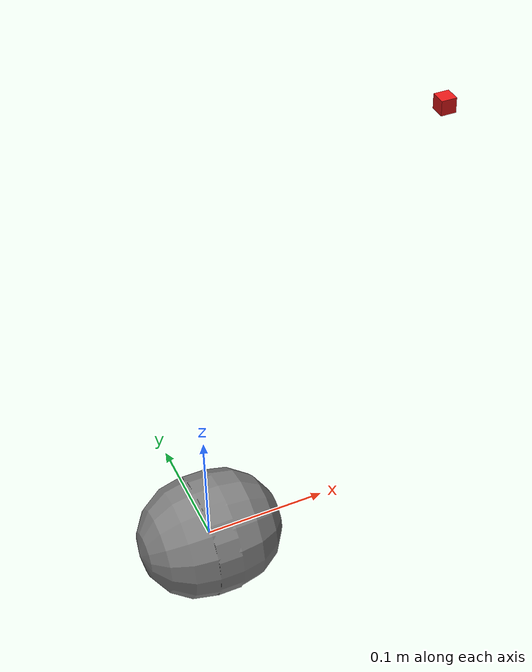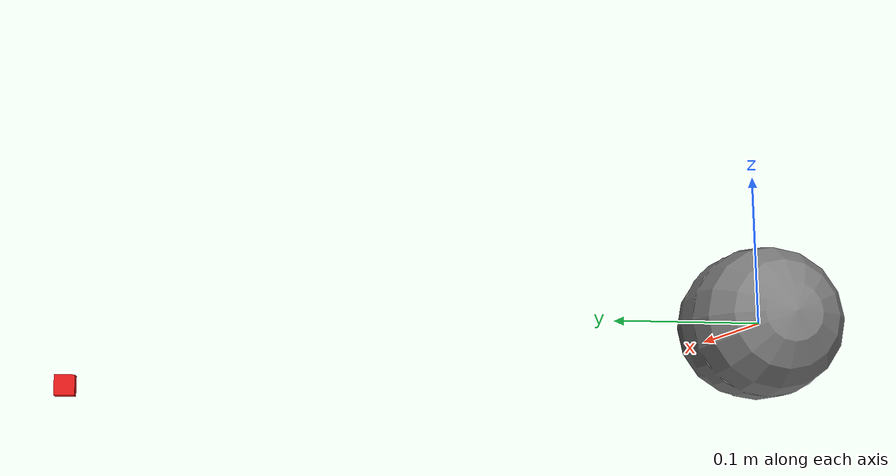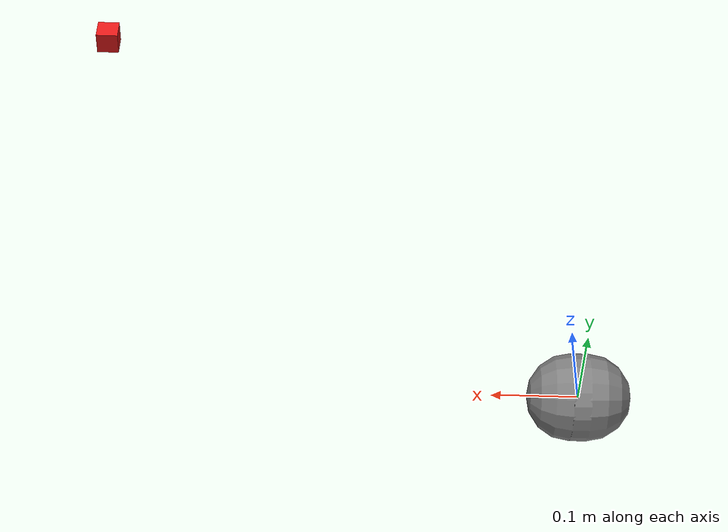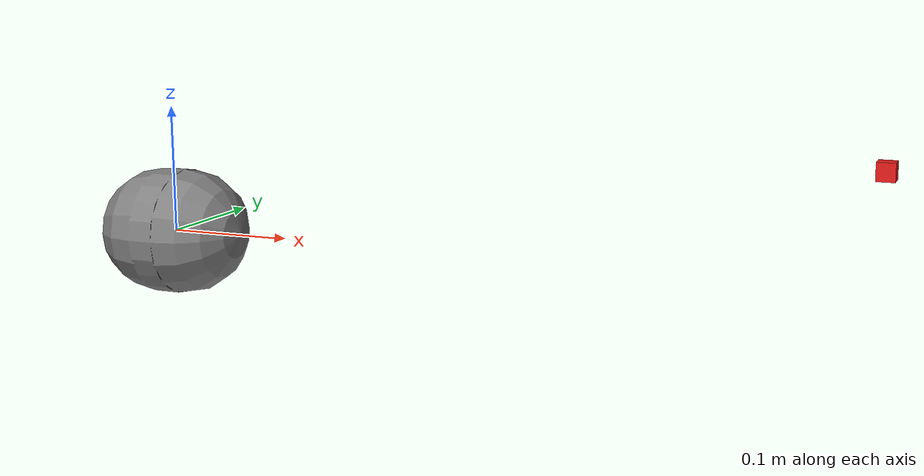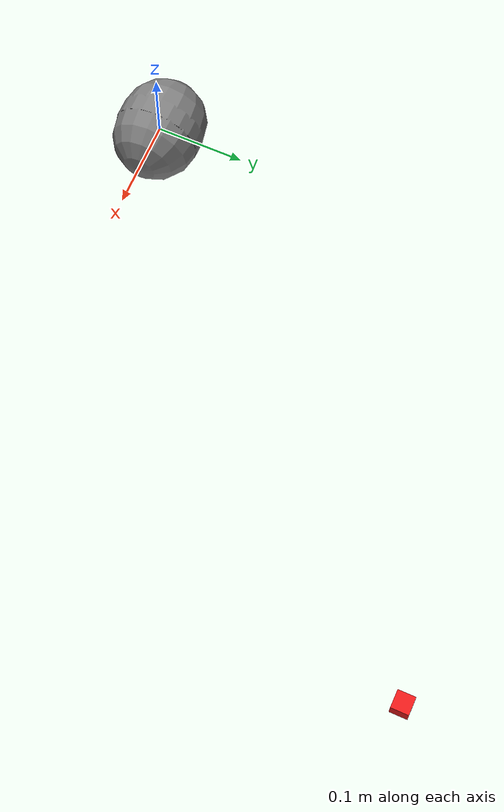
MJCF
<mujoco model="linearparticle">

    <compiler inertiafromgeom="true" angle="radian" coordinate="local" />
    <option timestep="0.01" gravity="0 0 0" iterations="20" integrator="Euler" />
    <default>
        <joint limited="false" damping="1" />
        <geom contype="2" conaffinity="1" condim="1" friction=".5 .1 .1" density="1000" margin="0.002" />
    </default>

    <worldbody>
        <geom name="target" type="box" pos="0.5 0.5 0" size="0.01 0.01 0.01" rgba="0.9 0.1 0.1 1.0" />
        <body name="particle" pos="0 0 0">
            <geom name="particle_geom" type="capsule" fromto="-0.01 0 0 0.01 0 0" size="0.05" />
            <site name="particle_site" pos="0 0 0" size="0.01" />
            <joint name="ball_x" type="slide" pos="0 0 0" axis="1 0 0" />
        </body>
    </worldbody>

    <actuator>
        <motor joint="ball_x" />
    </actuator>
</mujoco>
